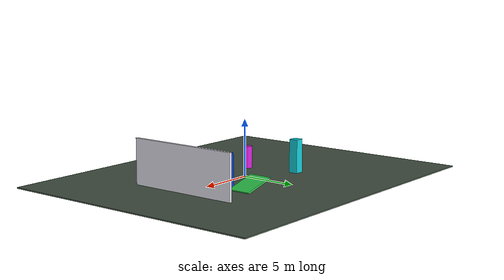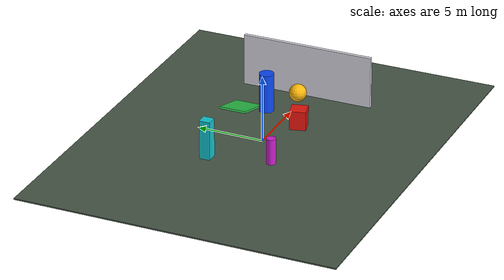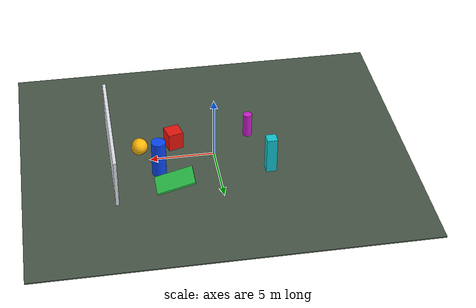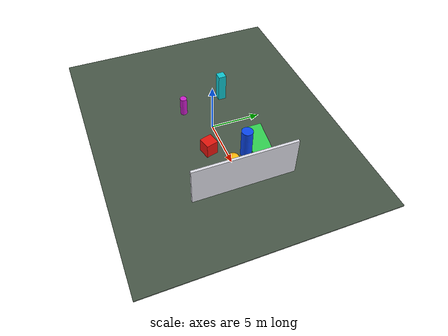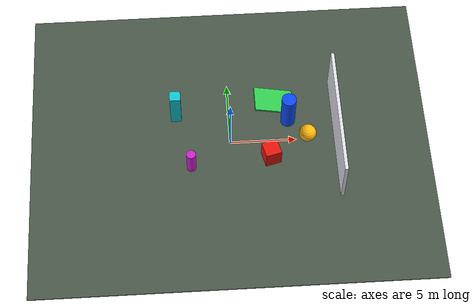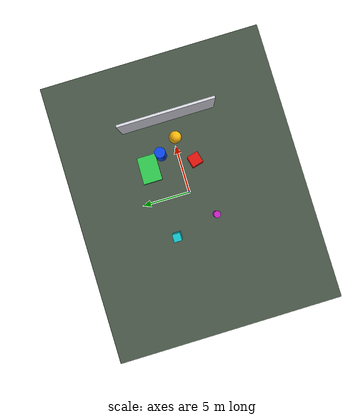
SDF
<sdf version="1.9">
 <world name="iris_sensor_arena">
  <physics name="1ms" type="ignore">
   <max_step_size>0.001</max_step_size>
   <real_time_factor>1.0</real_time_factor>
  </physics>
  <plugin filename="gz-sim-physics-system" name="gz::sim::systems::Physics"/>
  <plugin filename="gz-sim-sensors-system" name="gz::sim::systems::Sensors">
   <render_engine>ogre2</render_engine>
  </plugin>
  <plugin filename="gz-sim-user-commands-system" name="gz::sim::systems::UserCommands"/>
  <plugin filename="gz-sim-scene-broadcaster-system" name="gz::sim::systems::SceneBroadcaster"/>
  <plugin filename="gz-sim-imu-system" name="gz::sim::systems::Imu"/>
  <plugin filename="gz-sim-magnetometer-system" name="gz::sim::systems::Magnetometer"/>
  <plugin filename="gz-sim-air-pressure-system" name="gz::sim::systems::AirPressure"/>
  <plugin filename="gz-sim-navsat-system" name="gz::sim::systems::NavSat"/>
  <spherical_coordinates>
   <surface_model>EARTH_WGS84</surface_model>
   <latitude_deg>10.8231</latitude_deg>
   <longitude_deg>106.6297</longitude_deg>
   <elevation>10</elevation>
   <heading_deg>0</heading_deg>
  </spherical_coordinates>
  <magnetic_field>2.1e-5 5.0e-6 -4.2e-5</magnetic_field>
  <scene><ambient>0.55 0.55 0.55</ambient><background>0.72 0.82 0.92</background><shadows>true</shadows></scene>
  <light type="directional" name="sun">
   <pose>0 0 12 0 0 0</pose>
   <diffuse>0.9 0.9 0.85 1</diffuse>
   <specular>0.2 0.2 0.2 1</specular>
   <direction>-0.4 0.2 -0.9</direction>
  </light>
  <model name="ground">
   <static>true</static>
   <link name="link">
    <collision name="collision"><geometry><box><size>30 24 0.1</size></box></geometry></collision>
    <visual name="visual">
     <geometry><box><size>30 24 0.1</size></box></geometry>
     <material><ambient>0.18 0.22 0.18 1</ambient><diffuse>0.28 0.34 0.28 1</diffuse></material>
    </visual>
   </link>
  </model>
  <model name="front_wall">
   <static>true</static>
   <pose>8 0 2 0 0 0</pose>
   <link name="link">
    <collision name="collision"><geometry><box><size>0.25 10 4</size></box></geometry></collision>
    <visual name="visual">
     <geometry><box><size>0.25 10 4</size></box></geometry>
     <material><ambient>0.78 0.78 0.82 1</ambient><diffuse>0.88 0.88 0.92 1</diffuse></material>
    </visual>
   </link>
  </model>
  <model name="red_box">
   <static>true</static>
   <pose>3.0 -1.5 0.75 0 0 0.25</pose>
   <link name="link">
    <collision name="collision"><geometry><box><size>1.2 1.2 1.5</size></box></geometry></collision>
    <visual name="visual">
     <geometry><box><size>1.2 1.2 1.5</size></box></geometry>
     <material><ambient>0.65 0.05 0.04 1</ambient><diffuse>0.9 0.08 0.05 1</diffuse></material>
    </visual>
   </link>
  </model>
  <model name="blue_tower">
   <static>true</static>
   <pose>4.5 1.7 1.5 0 0 0</pose>
   <link name="link">
    <collision name="collision">
     <geometry><cylinder><radius>0.55</radius><length>3</length></cylinder></geometry>
    </collision>
    <visual name="visual">
     <geometry><cylinder><radius>0.55</radius><length>3</length></cylinder></geometry>
     <material><ambient>0.03 0.18 0.65 1</ambient><diffuse>0.04 0.28 0.95 1</diffuse></material>
    </visual>
   </link>
  </model>
  <model name="yellow_sphere">
   <static>true</static>
   <pose>5.8 -0.2 1.25 0 0 0</pose>
   <link name="link">
    <collision name="collision"><geometry><sphere><radius>0.65</radius></sphere></geometry></collision>
    <visual name="visual">
     <geometry><sphere><radius>0.65</radius></sphere></geometry>
     <material><ambient>0.72 0.50 0.02 1</ambient><diffuse>1 0.72 0.04 1</diffuse></material>
    </visual>
   </link>
  </model>
  <model name="ramp">
   <static>true</static>
   <pose>3.5 3.3 0.45 0 0.26 0</pose>
   <link name="link">
    <collision name="collision"><geometry><box><size>3 2 0.15</size></box></geometry></collision>
    <visual name="visual">
     <geometry><box><size>3 2 0.15</size></box></geometry>
     <material><ambient>0.12 0.55 0.22 1</ambient><diffuse>0.18 0.78 0.30 1</diffuse></material>
    </visual>
   </link>
  </model>
  <model name="rear_columns">
   <static>true</static>
   <link name="link">
    <collision name="left_collision">
     <pose>-3 -2 1 0 0 0</pose>
     <geometry><cylinder><radius>0.35</radius><length>2</length></cylinder></geometry>
    </collision>
    <visual name="left_visual">
     <pose>-3 -2 1 0 0 0</pose>
     <geometry><cylinder><radius>0.35</radius><length>2</length></cylinder></geometry>
     <material><ambient>0.55 0.08 0.55 1</ambient><diffuse>0.8 0.12 0.8 1</diffuse></material>
    </visual>
    <collision name="right_collision">
     <pose>-4 2.5 1.5 0 0 0</pose>
     <geometry><box><size>0.8 0.8 3</size></box></geometry>
    </collision>
    <visual name="right_visual">
     <pose>-4 2.5 1.5 0 0 0</pose>
     <geometry><box><size>0.8 0.8 3</size></box></geometry>
     <material><ambient>0.05 0.55 0.58 1</ambient><diffuse>0.06 0.78 0.82 1</diffuse></material>
    </visual>
   </link>
  </model>
 </world>
</sdf>
